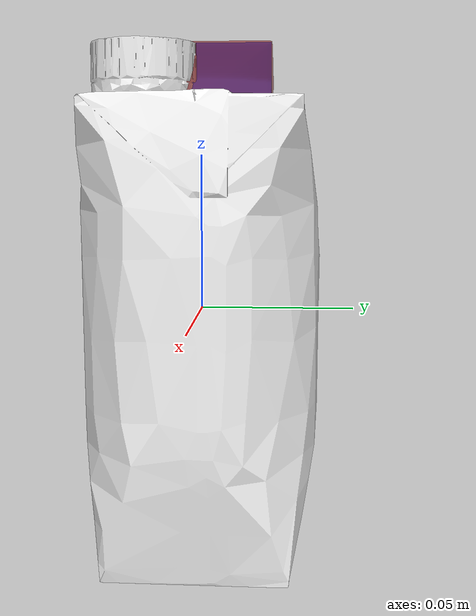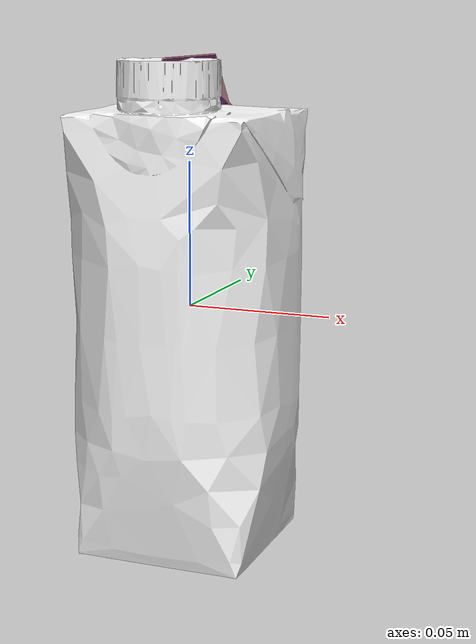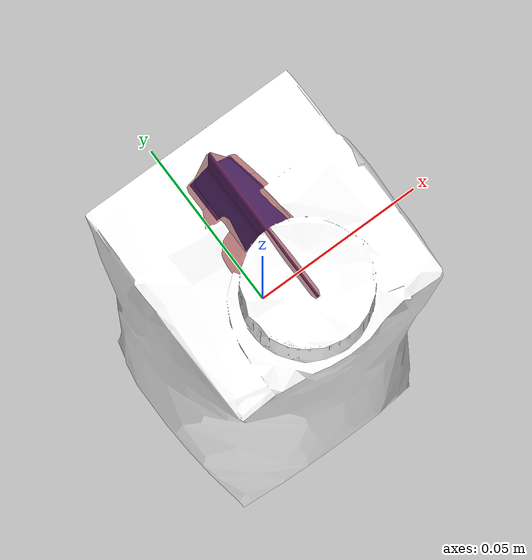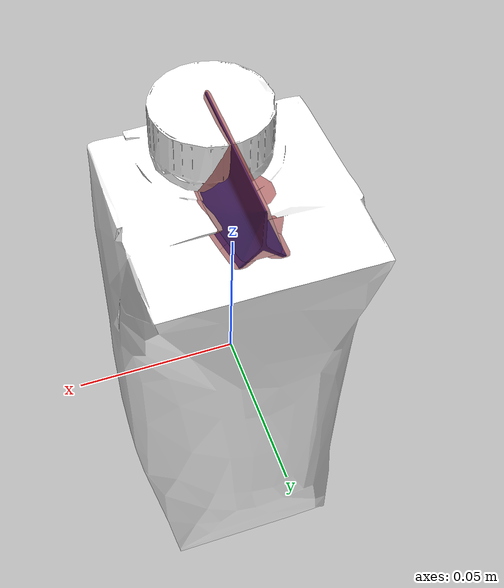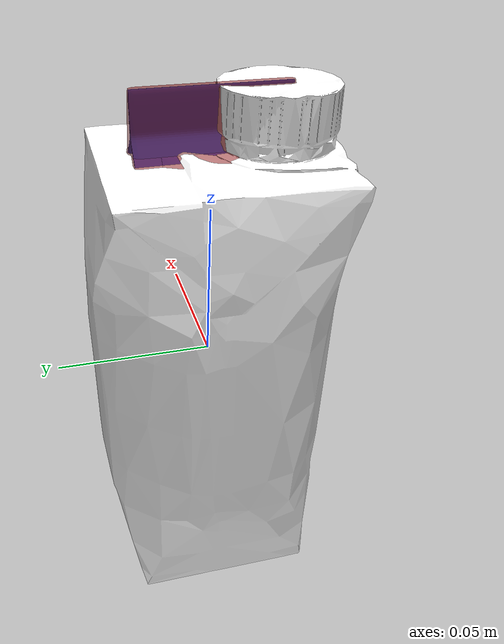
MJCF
<?xml version='1.0' encoding='utf-8'?>
<mujoco model="milk_4">
  <asset>
    <mesh file="visual/model_normalized_0.obj" name="model_normalized_0_vis" scale="0.16999999999999996 0.16999999999999996 0.16999999999999996" refquat="1.0 0.0 0.0 0.0" />
    <mesh file="visual/model_normalized_1.obj" name="model_normalized_1_vis" scale="0.16999999999999996 0.16999999999999996 0.16999999999999996" refquat="1.0 0.0 0.0 0.0" />
    <material name="Material.171" specular="0.5" shininess="0.119339151" rgba="0.228248 0.333787 0.800000 1.0" />
    <material name="material_0.012" specular="0.5" shininess="0.15999998099999999" rgba="1.000000 1.000000 1.000000 1.0" />
    <mesh file="collision/collision_mesh_collision_0.obj" name="milk_collision_mesh_0" scale="0.16999999999999996 0.16999999999999996 0.16999999999999996" refquat="1.0 0.0 0.0 0.0" />
    <mesh file="collision/collision_mesh_collision_1.obj" name="milk_collision_mesh_1" scale="0.16999999999999996 0.16999999999999996 0.16999999999999996" refquat="1.0 0.0 0.0 0.0" />
    <mesh file="collision/collision_mesh_collision_2.obj" name="milk_collision_mesh_2" scale="0.16999999999999996 0.16999999999999996 0.16999999999999996" refquat="1.0 0.0 0.0 0.0" />
    <mesh file="collision/collision_mesh_collision_3.obj" name="milk_collision_mesh_3" scale="0.16999999999999996 0.16999999999999996 0.16999999999999996" refquat="1.0 0.0 0.0 0.0" />
    <mesh file="collision/collision_mesh_collision_4.obj" name="milk_collision_mesh_4" scale="0.16999999999999996 0.16999999999999996 0.16999999999999996" refquat="1.0 0.0 0.0 0.0" />
    <mesh file="collision/collision_mesh_collision_5.obj" name="milk_collision_mesh_5" scale="0.16999999999999996 0.16999999999999996 0.16999999999999996" refquat="1.0 0.0 0.0 0.0" />
    <mesh file="collision/collision_mesh_collision_6.obj" name="milk_collision_mesh_6" scale="0.16999999999999996 0.16999999999999996 0.16999999999999996" refquat="1.0 0.0 0.0 0.0" />
    <mesh file="collision/collision_mesh_collision_7.obj" name="milk_collision_mesh_7" scale="0.16999999999999996 0.16999999999999996 0.16999999999999996" refquat="1.0 0.0 0.0 0.0" />
    <mesh file="collision/collision_mesh_collision_8.obj" name="milk_collision_mesh_8" scale="0.16999999999999996 0.16999999999999996 0.16999999999999996" refquat="1.0 0.0 0.0 0.0" />
    <mesh file="collision/collision_mesh_collision_9.obj" name="milk_collision_mesh_9" scale="0.16999999999999996 0.16999999999999996 0.16999999999999996" refquat="1.0 0.0 0.0 0.0" />
    <mesh file="collision/collision_mesh_collision_10.obj" name="milk_collision_mesh_10" scale="0.16999999999999996 0.16999999999999996 0.16999999999999996" refquat="1.0 0.0 0.0 0.0" />
    <mesh file="collision/collision_mesh_collision_11.obj" name="milk_collision_mesh_11" scale="0.16999999999999996 0.16999999999999996 0.16999999999999996" refquat="1.0 0.0 0.0 0.0" />
    <mesh file="collision/collision_mesh_collision_12.obj" name="milk_collision_mesh_12" scale="0.16999999999999996 0.16999999999999996 0.16999999999999996" refquat="1.0 0.0 0.0 0.0" />
  </asset>
  <default>
    <default class="region">
      <geom group="1" conaffinity="0" contype="0" rgba="0 1 0 0" mass="0" />
    </default>
    <default class="collision">
      <geom group="0" rgba="0.5 0 0 0.5" density="1219.601303496" />
    </default>
  </default>
  <worldbody>
    <body>
      <body name="object">
        <geom solimp="0.998 0.998 0.001" solref="0.001 1" density="121.960130350" friction="0.95 0.3 0.1" type="mesh" mesh="model_normalized_0_vis" conaffinity="0" contype="0" group="1" material="material_0.012" />
        <geom solimp="0.998 0.998 0.001" solref="0.001 1" density="121.960130350" friction="0.95 0.3 0.1" type="mesh" mesh="model_normalized_1_vis" conaffinity="0" contype="0" group="1" material="Material.171" />
        <geom class="region" name="reg_bbox" type="box" pos="3.748500000008702e-07 -2.281400000000016e-06 -0.00024095800000000216" size="0.028785920649999994 0.02764649649999999 0.08568919189999998" />
        <geom mesh="milk_collision_mesh_0" type="mesh" class="collision" />
        <geom mesh="milk_collision_mesh_1" type="mesh" class="collision" />
        <geom mesh="milk_collision_mesh_2" type="mesh" class="collision" />
        <geom mesh="milk_collision_mesh_3" type="mesh" class="collision" />
        <geom mesh="milk_collision_mesh_4" type="mesh" class="collision" />
        <geom mesh="milk_collision_mesh_5" type="mesh" class="collision" />
        <geom mesh="milk_collision_mesh_6" type="mesh" class="collision" />
        <geom mesh="milk_collision_mesh_7" type="mesh" class="collision" />
        <geom mesh="milk_collision_mesh_8" type="mesh" class="collision" />
        <geom mesh="milk_collision_mesh_9" type="mesh" class="collision" />
        <geom mesh="milk_collision_mesh_10" type="mesh" class="collision" />
        <geom mesh="milk_collision_mesh_11" type="mesh" class="collision" />
        <geom mesh="milk_collision_mesh_12" type="mesh" class="collision" />
      </body>
    </body>
  </worldbody>
</mujoco>
